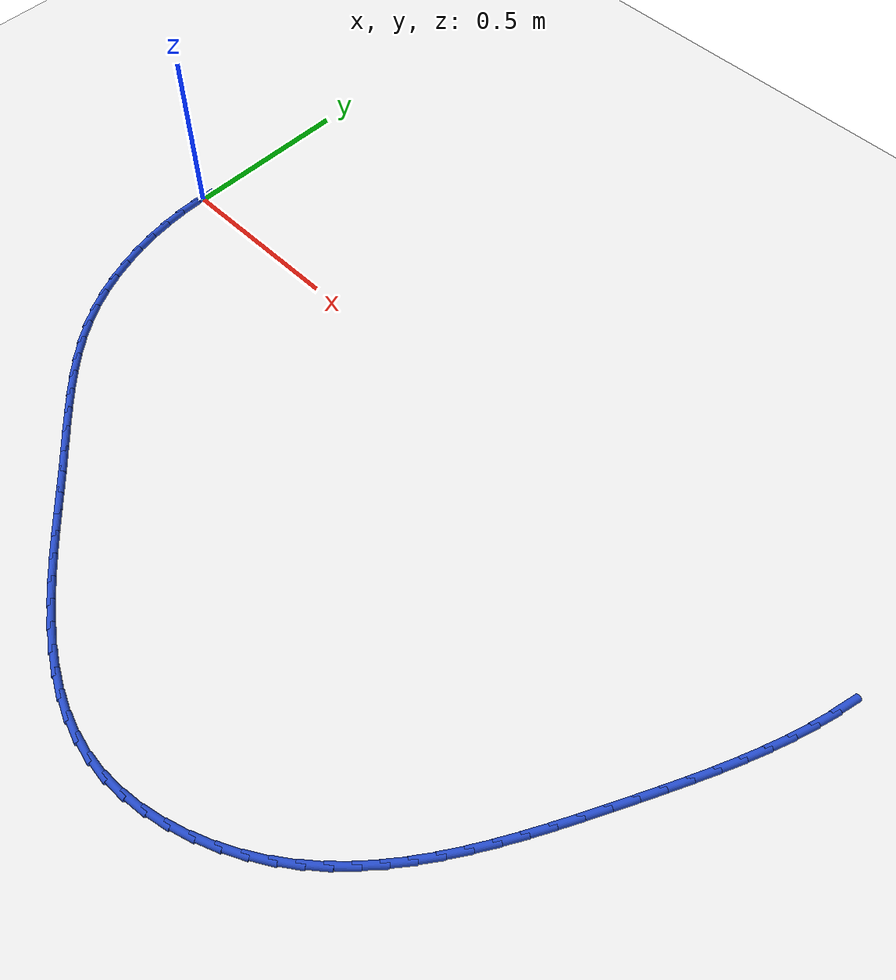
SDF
<sdf version="1.6">
 <world name="default">
  <model name="ground_plane">
   <static>1</static>
   <link name="link">
    <collision name="collision">
     <geometry><plane><normal>0 0 1</normal><size>100 100</size></plane></geometry>
     <surface><friction><ode><mu>100</mu><mu2>50</mu2></ode></friction></surface>
    </collision>
    <visual name="visual">
     <cast_shadows>0</cast_shadows>
     <geometry><plane><normal>0 0 1</normal><size>100 100</size></plane></geometry>
     <material>
      <script><uri>file://media/materials/scripts/gazebo.material</uri><name>Gazebo/WhiteGlow</name></script>
     </material>
    </visual>
   </link>
  </model>
  <model name="line">
   <link name="link_0">
    <pose>2.7755575615628914e-17 8.326672684688674e-17 0.01 0 1.57 1.532792231413533</pose>
    <collision name="collision">
     <geometry><cylinder><radius>0.01</radius><length>0.08</length></cylinder></geometry>
    </collision>
    <visual name="visual">
     <material>
      <script><name>Gazebo/Blue</name><uri>file://media/materials/scripts/gazebo.material</uri></script>
     </material>
     <geometry><cylinder><radius>0.01</radius><length>0.08</length></cylinder></geometry>
    </visual>
   </link>
   <link name="link_60">
    <pose>2.271401792156979 -0.0005981783500707723 0.01 0 1.57 1.3261378564803663</pose>
    <collision name="collision">
     <geometry><cylinder><radius>0.01</radius><length>0.08</length></cylinder></geometry>
    </collision>
    <visual name="visual">
     <material>
      <script><name>Gazebo/Blue</name><uri>file://media/materials/scripts/gazebo.material</uri></script>
     </material>
     <geometry><cylinder><radius>0.01</radius><length>0.08</length></cylinder></geometry>
    </visual>
   </link>
   <link name="link_61">
    <pose>2.2568721467750166 -0.058795950201607196 0.01 0 1.57 1.2764122337094257</pose>
    <collision name="collision">
     <geometry><cylinder><radius>0.01</radius><length>0.08</length></cylinder></geometry>
    </collision>
    <visual name="visual">
     <material>
      <script><name>Gazebo/Blue</name><uri>file://media/materials/scripts/gazebo.material</uri></script>
     </material>
     <geometry><cylinder><radius>0.01</radius><length>0.08</length></cylinder></geometry>
    </visual>
   </link>
   <link name="link_62">
    <pose>2.239126371986851 -0.11732547256954205 0.01 0 1.57 1.2343042193337972</pose>
    <collision name="collision">
     <geometry><cylinder><radius>0.01</radius><length>0.08</length></cylinder></geometry>
    </collision>
    <visual name="visual">
     <material>
      <script><name>Gazebo/Blue</name><uri>file://media/materials/scripts/gazebo.material</uri></script>
     </material>
     <geometry><cylinder><radius>0.01</radius><length>0.08</length></cylinder></geometry>
    </visual>
   </link>
   <link name="link_63">
    <pose>2.2185758948563343 -0.176075545871575 0.01 0 1.57 1.1991087182027274</pose>
    <collision name="collision">
     <geometry><cylinder><radius>0.01</radius><length>0.08</length></cylinder></geometry>
    </collision>
    <visual name="visual">
     <material>
      <script><name>Gazebo/Blue</name><uri>file://media/materials/scripts/gazebo.material</uri></script>
     </material>
     <geometry><cylinder><radius>0.01</radius><length>0.08</length></cylinder></geometry>
    </visual>
   </link>
   <link name="link_64">
    <pose>2.1956321424473177 -0.23493497052540308 0.01 0 1.57 1.1702052773899536</pose>
    <collision name="collision">
     <geometry><cylinder><radius>0.01</radius><length>0.08</length></cylinder></geometry>
    </collision>
    <visual name="visual">
     <material>
      <script><name>Gazebo/Blue</name><uri>file://media/materials/scripts/gazebo.material</uri></script>
     </material>
     <geometry><cylinder><radius>0.01</radius><length>0.08</length></cylinder></geometry>
    </visual>
   </link>
   <link name="link_65">
    <pose>2.1707065418236526 -0.29379254694872575 0.01 0 1.57 1.1470794342509032</pose>
    <collision name="collision">
     <geometry><cylinder><radius>0.01</radius><length>0.08</length></cylinder></geometry>
    </collision>
    <visual name="visual">
     <material>
      <script><name>Gazebo/Blue</name><uri>file://media/materials/scripts/gazebo.material</uri></script>
     </material>
     <geometry><cylinder><radius>0.01</radius><length>0.08</length></cylinder></geometry>
    </visual>
   </link>
   <link name="link_66">
    <pose>2.1442105200491897 -0.35253707555924235 0.01 0 1.57 1.1293313094129451</pose>
    <collision name="collision">
     <geometry><cylinder><radius>0.01</radius><length>0.08</length></cylinder></geometry>
    </collision>
    <visual name="visual">
     <material>
      <script><name>Gazebo/Blue</name><uri>file://media/materials/scripts/gazebo.material</uri></script>
     </material>
     <geometry><cylinder><radius>0.01</radius><length>0.08</length></cylinder></geometry>
    </visual>
   </link>
   <link name="link_67">
    <pose>2.1165555041877826 -0.4110573567746503 0.01 0 1.57 1.116678352730341</pose>
    <collision name="collision">
     <geometry><cylinder><radius>0.01</radius><length>0.08</length></cylinder></geometry>
    </collision>
    <visual name="visual">
     <material>
      <script><name>Gazebo/Blue</name><uri>file://media/materials/scripts/gazebo.material</uri></script>
     </material>
     <geometry><cylinder><radius>0.01</radius><length>0.08</length></cylinder></geometry>
    </visual>
   </link>
   <link name="link_68">
    <pose>2.088152921303281 -0.46924219101264886 0.01 0 1.57 1.108956723404729</pose>
    <collision name="collision">
     <geometry><cylinder><radius>0.01</radius><length>0.08</length></cylinder></geometry>
    </collision>
    <visual name="visual">
     <material>
      <script><name>Gazebo/Blue</name><uri>file://media/materials/scripts/gazebo.material</uri></script>
     </material>
     <geometry><cylinder><radius>0.01</radius><length>0.08</length></cylinder></geometry>
    </visual>
   </link>
   <link name="link_69">
    <pose>2.0594141984595353 -0.5269803786909366 0.01 0 1.57 1.1045768887393947</pose>
    <collision name="collision">
     <geometry><cylinder><radius>0.01</radius><length>0.08</length></cylinder></geometry>
    </collision>
    <visual name="visual">
     <material>
      <script><name>Gazebo/Blue</name><uri>file://media/materials/scripts/gazebo.material</uri></script>
     </material>
     <geometry><cylinder><radius>0.01</radius><length>0.08</length></cylinder></geometry>
    </visual>
   </link>
   <link name="link_70">
    <pose>2.0306474276278412 -0.5841458964468993 0.01 0 1.57 1.0968054019725302</pose>
    <collision name="collision">
     <geometry><cylinder><radius>0.01</radius><length>0.08</length></cylinder></geometry>
    </collision>
    <visual name="visual">
     <material>
      <script><name>Gazebo/Blue</name><uri>file://media/materials/scripts/gazebo.material</uri></script>
     </material>
     <geometry><cylinder><radius>0.01</radius><length>0.08</length></cylinder></geometry>
    </visual>
   </link>
   <link name="link_71">
    <pose>2.001713067883838 -0.6405485064139963 0.01 0 1.57 1.0836677969830797</pose>
    <collision name="collision">
     <geometry><cylinder><radius>0.01</radius><length>0.08</length></cylinder></geometry>
    </collision>
    <visual name="visual">
     <material>
      <script><name>Gazebo/Blue</name><uri>file://media/materials/scripts/gazebo.material</uri></script>
     </material>
     <geometry><cylinder><radius>0.01</radius><length>0.08</length></cylinder></geometry>
    </visual>
   </link>
   <link name="link_72">
    <pose>1.9723503974388112 -0.6959805869070185 0.01 0 1.57 1.0649574060579046</pose>
    <collision name="collision">
     <geometry><cylinder><radius>0.01</radius><length>0.08</length></cylinder></geometry>
    </collision>
    <visual name="visual">
     <material>
      <script><name>Gazebo/Blue</name><uri>file://media/materials/scripts/gazebo.material</uri></script>
     </material>
     <geometry><cylinder><radius>0.01</radius><length>0.08</length></cylinder></geometry>
    </visual>
   </link>
   <link name="link_73">
    <pose>1.942298692405942 -0.7502345159397749 0.01 0 1.57 1.040442802072884</pose>
    <collision name="collision">
     <geometry><cylinder><radius>0.01</radius><length>0.08</length></cylinder></geometry>
    </collision>
    <visual name="visual">
     <material>
      <script><name>Gazebo/Blue</name><uri>file://media/materials/scripts/gazebo.material</uri></script>
     </material>
     <geometry><cylinder><radius>0.01</radius><length>0.08</length></cylinder></geometry>
    </visual>
   </link>
   <link name="link_74">
    <pose>1.9112972288984085 -0.8031026715260748 0.01 0 1.57 1.0098832333275587</pose>
    <collision name="collision">
     <geometry><cylinder><radius>0.01</radius><length>0.08</length></cylinder></geometry>
    </collision>
    <visual name="visual">
     <material>
      <script><name>Gazebo/Blue</name><uri>file://media/materials/scripts/gazebo.material</uri></script>
     </material>
     <geometry><cylinder><radius>0.01</radius><length>0.08</length></cylinder></geometry>
    </visual>
   </link>
   <link name="link_75">
    <pose>1.879085283029393 -0.8543774316797266 0.01 0 1.57 0.9730531030176095</pose>
    <collision name="collision">
     <geometry><cylinder><radius>0.01</radius><length>0.08</length></cylinder></geometry>
    </collision>
    <visual name="visual">
     <material>
      <script><name>Gazebo/Blue</name><uri>file://media/materials/scripts/gazebo.material</uri></script>
     </material>
     <geometry><cylinder><radius>0.01</radius><length>0.08</length></cylinder></geometry>
    </visual>
   </link>
   <link name="link_76">
    <pose>1.845402130912075 -0.9038511744145397 0.01 0 1.57 0.929777370723623</pose>
    <collision name="collision">
     <geometry><cylinder><radius>0.01</radius><length>0.08</length></cylinder></geometry>
    </collision>
    <visual name="visual">
     <material>
      <script><name>Gazebo/Blue</name><uri>file://media/materials/scripts/gazebo.material</uri></script>
     </material>
     <geometry><cylinder><radius>0.01</radius><length>0.08</length></cylinder></geometry>
    </visual>
   </link>
   <link name="link_77">
    <pose>1.8099870486596346 -0.9513162777443229 0.01 0 1.57 0.8799787886957166</pose>
    <collision name="collision">
     <geometry><cylinder><radius>0.01</radius><length>0.08</length></cylinder></geometry>
    </collision>
    <visual name="visual">
     <material>
      <script><name>Gazebo/Blue</name><uri>file://media/materials/scripts/gazebo.material</uri></script>
     </material>
     <geometry><cylinder><radius>0.01</radius><length>0.08</length></cylinder></geometry>
    </visual>
   </link>
   <link name="link_78">
    <pose>1.7725793123852511 -0.9965651196828865 0.01 0 1.57 0.8237354741875375</pose>
    <collision name="collision">
     <geometry><cylinder><radius>0.01</radius><length>0.08</length></cylinder></geometry>
    </collision>
    <visual name="visual">
     <material>
      <script><name>Gazebo/Blue</name><uri>file://media/materials/scripts/gazebo.material</uri></script>
     </material>
     <geometry><cylinder><radius>0.01</radius><length>0.08</length></cylinder></geometry>
    </visual>
   </link>
   <link name="link_79">
    <pose>1.7329181982021065 -1.0393900782440377 0.01 0 1.57 0.761343136880704</pose>
    <collision name="collision">
     <geometry><cylinder><radius>0.01</radius><length>0.08</length></cylinder></geometry>
    </collision>
    <visual name="visual">
     <material>
      <script><name>Gazebo/Blue</name><uri>file://media/materials/scripts/gazebo.material</uri></script>
     </material>
     <geometry><cylinder><radius>0.01</radius><length>0.08</length></cylinder></geometry>
    </visual>
   </link>
   <link name="link_80">
    <pose>1.6907429822233802 -1.0795835314415871 0.01 0 1.57 0.69337071587507</pose>
    <collision name="collision">
     <geometry><cylinder><radius>0.01</radius><length>0.08</length></cylinder></geometry>
    </collision>
    <visual name="visual">
     <material>
      <script><name>Gazebo/Blue</name><uri>file://media/materials/scripts/gazebo.material</uri></script>
     </material>
     <geometry><cylinder><radius>0.01</radius><length>0.08</length></cylinder></geometry>
    </visual>
   </link>
   <link name="link_81">
    <pose>1.6457929405622513 -1.1169378572893434 0.01 0 1.57 0.6206930472653036</pose>
    <collision name="collision">
     <geometry><cylinder><radius>0.01</radius><length>0.08</length></cylinder></geometry>
    </collision>
    <visual name="visual">
     <material>
      <script><name>Gazebo/Blue</name><uri>file://media/materials/scripts/gazebo.material</uri></script>
     </material>
     <geometry><cylinder><radius>0.01</radius><length>0.08</length></cylinder></geometry>
    </visual>
   </link>
   <link name="link_82">
    <pose>1.5978073493319014 -1.1512454338011149 0.01 0 1.57 0.5445632836083576</pose>
    <collision name="collision">
     <geometry><cylinder><radius>0.01</radius><length>0.08</length></cylinder></geometry>
    </collision>
    <visual name="visual">
     <material>
      <script><name>Gazebo/Blue</name><uri>file://media/materials/scripts/gazebo.material</uri></script>
     </material>
     <geometry><cylinder><radius>0.01</radius><length>0.08</length></cylinder></geometry>
    </visual>
   </link>
   <link name="link_83">
    <pose>1.5465445105570461 -1.1822927528388372 0.01 0 1.57 0.46764935067967994</pose>
    <collision name="collision">
     <geometry><cylinder><radius>0.01</radius><length>0.08</length></cylinder></geometry>
    </collision>
    <visual name="visual">
     <material>
      <script><name>Gazebo/Blue</name><uri>file://media/materials/scripts/gazebo.material</uri></script>
     </material>
     <geometry><cylinder><radius>0.01</radius><length>0.08</length></cylinder></geometry>
    </visual>
   </link>
   <link name="link_84">
    <pose>1.4922325654096864 -1.209720949519118 0.01 0 1.57 0.39022823965275927</pose>
    <collision name="collision">
     <geometry><cylinder><radius>0.01</radius><length>0.08</length></cylinder></geometry>
    </collision>
    <visual name="visual">
     <material>
      <script><name>Gazebo/Blue</name><uri>file://media/materials/scripts/gazebo.material</uri></script>
     </material>
     <geometry><cylinder><radius>0.01</radius><length>0.08</length></cylinder></geometry>
    </visual>
   </link>
   <link name="link_85">
    <pose>1.4355881374502697 -1.233020034450226 0.01 0 1.57 0.30996668205977695</pose>
    <collision name="collision">
     <geometry><cylinder><radius>0.01</radius><length>0.08</length></cylinder></geometry>
    </collision>
    <visual name="visual">
     <material>
      <script><name>Gazebo/Blue</name><uri>file://media/materials/scripts/gazebo.material</uri></script>
     </material>
     <geometry><cylinder><radius>0.01</radius><length>0.08</length></cylinder></geometry>
    </visual>
   </link>
   <link name="link_86">
    <pose>1.3773506065690189 -1.2516729779883546 0.01 0 1.57 0.22444096461834706</pose>
    <collision name="collision">
     <geometry><cylinder><radius>0.01</radius><length>0.08</length></cylinder></geometry>
    </collision>
    <visual name="visual">
     <material>
      <script><name>Gazebo/Blue</name><uri>file://media/materials/scripts/gazebo.material</uri></script>
     </material>
     <geometry><cylinder><radius>0.01</radius><length>0.08</length></cylinder></geometry>
    </visual>
   </link>
   <link name="link_87">
    <pose>1.3182593526561532 -1.2651627504896963 0.01 0 1.57 0.1311488415604125</pose>
    <collision name="collision">
     <geometry><cylinder><radius>0.01</radius><length>0.08</length></cylinder></geometry>
    </collision>
    <visual name="visual">
     <material>
      <script><name>Gazebo/Blue</name><uri>file://media/materials/scripts/gazebo.material</uri></script>
     </material>
     <geometry><cylinder><radius>0.01</radius><length>0.08</length></cylinder></geometry>
    </visual>
   </link>
   <link name="link_88">
    <pose>1.259053755601893 -1.2729723223104443 0.01 0 1.57 0.027516543607859306</pose>
    <collision name="collision">
     <geometry><cylinder><radius>0.01</radius><length>0.08</length></cylinder></geometry>
    </collision>
    <visual name="visual">
     <material>
      <script><name>Gazebo/Blue</name><uri>file://media/materials/scripts/gazebo.material</uri></script>
     </material>
     <geometry><cylinder><radius>0.01</radius><length>0.08</length></cylinder></geometry>
    </visual>
   </link>
   <link name="link_89">
    <pose>1.2004731952964582 -1.2745846638067924 0.01 0 1.57 -0.08594302344162245</pose>
    <collision name="collision">
     <geometry><cylinder><radius>0.01</radius><length>0.08</length></cylinder></geometry>
    </collision>
    <visual name="visual">
     <material>
      <script><name>Gazebo/Blue</name><uri>file://media/materials/scripts/gazebo.material</uri></script>
     </material>
     <geometry><cylinder><radius>0.01</radius><length>0.08</length></cylinder></geometry>
    </visual>
   </link>
   <link name="link_90">
    <pose>1.14313312978244 -1.2696445162406962 0.01 0 1.57 -0.1959564750295716</pose>
    <collision name="collision">
     <geometry><cylinder><radius>0.01</radius><length>0.08</length></cylinder></geometry>
    </collision>
    <visual name="visual">
     <material>
      <script><name>Gazebo/Blue</name><uri>file://media/materials/scripts/gazebo.material</uri></script>
     </material>
     <geometry><cylinder><radius>0.01</radius><length>0.08</length></cylinder></geometry>
    </visual>
   </link>
   <link name="link_91">
    <pose>1.0870944109380867 -1.2585206186457791 0.01 0 1.57 -0.296251295319989</pose>
    <collision name="collision">
     <geometry><cylinder><radius>0.01</radius><length>0.08</length></cylinder></geometry>
    </collision>
    <visual name="visual">
     <material>
      <script><name>Gazebo/Blue</name><uri>file://media/materials/scripts/gazebo.material</uri></script>
     </material>
     <geometry><cylinder><radius>0.01</radius><length>0.08</length></cylinder></geometry>
    </visual>
   </link>
   <link name="link_92">
    <pose>1.0322627996622427 -1.2417841699825762 0.01 0 1.57 -0.3851562213044246</pose>
    <collision name="collision">
     <geometry><cylinder><radius>0.01</radius><length>0.08</length></cylinder></geometry>
    </collision>
    <visual name="visual">
     <material>
      <script><name>Gazebo/Blue</name><uri>file://media/materials/scripts/gazebo.material</uri></script>
     </material>
     <geometry><cylinder><radius>0.01</radius><length>0.08</length></cylinder></geometry>
    </visual>
   </link>
   <link name="link_93">
    <pose>0.9785440495811795 -1.2200063787054305 0.01 0 1.57 -0.4620958655753481</pose>
    <collision name="collision">
     <geometry><cylinder><radius>0.01</radius><length>0.08</length></cylinder></geometry>
    </collision>
    <visual name="visual">
     <material>
      <script><name>Gazebo/Blue</name><uri>file://media/materials/scripts/gazebo.material</uri></script>
     </material>
     <geometry><cylinder><radius>0.01</radius><length>0.08</length></cylinder></geometry>
    </visual>
   </link>
   <link name="link_94">
    <pose>0.9258439143211721 -1.1937584532686845 0.01 0 1.57 -0.5272717042098041</pose>
    <collision name="collision">
     <geometry><cylinder><radius>0.01</radius><length>0.08</length></cylinder></geometry>
    </collision>
    <visual name="visual">
     <material>
      <script><name>Gazebo/Blue</name><uri>file://media/materials/scripts/gazebo.material</uri></script>
     </material>
     <geometry><cylinder><radius>0.01</radius><length>0.08</length></cylinder></geometry>
    </visual>
   </link>
   <link name="link_95">
    <pose>0.8740681475084934 -1.1636116021266827 0.01 0 1.57 -0.5813253719937664</pose>
    <collision name="collision">
     <geometry><cylinder><radius>0.01</radius><length>0.08</length></cylinder></geometry>
    </collision>
    <visual name="visual">
     <material>
      <script><name>Gazebo/Blue</name><uri>file://media/materials/scripts/gazebo.material</uri></script>
     </material>
     <geometry><cylinder><radius>0.01</radius><length>0.08</length></cylinder></geometry>
    </visual>
   </link>
   <link name="link_96">
    <pose>0.8231225027694153 -1.1301370337337664 0.01 0 1.57 -0.6250721682668762</pose>
    <collision name="collision">
     <geometry><cylinder><radius>0.01</radius><length>0.08</length></cylinder></geometry>
    </collision>
    <visual name="visual">
     <material>
      <script><name>Gazebo/Blue</name><uri>file://media/materials/scripts/gazebo.material</uri></script>
     </material>
     <geometry><cylinder><radius>0.01</radius><length>0.08</length></cylinder></geometry>
    </visual>
   </link>
   <link name="link_97">
    <pose>0.7729127337302123 -1.0939059565442804 0.01 0 1.57 -0.6593235450517713</pose>
    <collision name="collision">
     <geometry><cylinder><radius>0.01</radius><length>0.08</length></cylinder></geometry>
    </collision>
    <visual name="visual">
     <material>
      <script><name>Gazebo/Blue</name><uri>file://media/materials/scripts/gazebo.material</uri></script>
     </material>
     <geometry><cylinder><radius>0.01</radius><length>0.08</length></cylinder></geometry>
    </visual>
   </link>
   <link name="link_98">
    <pose>0.7233445940171572 -1.0554895790125673 0.01 0 1.57 -0.6847827131718394</pose>
    <collision name="collision">
     <geometry><cylinder><radius>0.01</radius><length>0.08</length></cylinder></geometry>
    </collision>
    <visual name="visual">
     <material>
      <script><name>Gazebo/Blue</name><uri>file://media/materials/scripts/gazebo.material</uri></script>
     </material>
     <geometry><cylinder><radius>0.01</radius><length>0.08</length></cylinder></geometry>
    </visual>
   </link>
   <link name="link_99">
    <pose>0.6743238372565231 -1.0154591095929701 0.01 0 1.57 -0.7019889859127101</pose>
    <collision name="collision">
     <geometry><cylinder><radius>0.01</radius><length>0.08</length></cylinder></geometry>
    </collision>
    <visual name="visual">
     <material>
      <script><name>Gazebo/Blue</name><uri>file://media/materials/scripts/gazebo.material</uri></script>
     </material>
     <geometry><cylinder><radius>0.01</radius><length>0.08</length></cylinder></geometry>
    </visual>
   </link>
   <link name="link_100">
    <pose>0.6257562170745824 -0.9743857567398314 0.01 0 1.57 -0.7112898616282047</pose>
    <collision name="collision">
     <geometry><cylinder><radius>0.01</radius><length>0.08</length></cylinder></geometry>
    </collision>
    <visual name="visual">
     <material>
      <script><name>Gazebo/Blue</name><uri>file://media/materials/scripts/gazebo.material</uri></script>
     </material>
     <geometry><cylinder><radius>0.01</radius><length>0.08</length></cylinder></geometry>
    </visual>
   </link>
   <link name="link_101">
    <pose>0.5775474870976098 -0.9328407289074957 0.01 0 1.57 -0.7128261807451488</pose>
    <collision name="collision">
     <geometry><cylinder><radius>0.01</radius><length>0.08</length></cylinder></geometry>
    </collision>
    <visual name="visual">
     <material>
      <script><name>Gazebo/Blue</name><uri>file://media/materials/scripts/gazebo.material</uri></script>
     </material>
     <geometry><cylinder><radius>0.01</radius><length>0.08</length></cylinder></geometry>
    </visual>
   </link>
   <link name="link_102">
    <pose>0.5296034009518774 -0.891395234550305 0.01 0 1.57 -0.7066848750398824</pose>
    <collision name="collision">
     <geometry><cylinder><radius>0.01</radius><length>0.08</length></cylinder></geometry>
    </collision>
    <visual name="visual">
     <material>
      <script><name>Gazebo/Blue</name><uri>file://media/materials/scripts/gazebo.material</uri></script>
     </material>
     <geometry><cylinder><radius>0.01</radius><length>0.08</length></cylinder></geometry>
    </visual>
   </link>
   <link name="link_103">
    <pose>0.48183433932091874 -0.8506109308099753 0.01 0 1.57 -0.6998281338691394</pose>
    <collision name="collision">
     <geometry><cylinder><radius>0.01</radius><length>0.08</length></cylinder></geometry>
    </collision>
    <visual name="visual">
     <material>
      <script><name>Gazebo/Blue</name><uri>file://media/materials/scripts/gazebo.material</uri></script>
     </material>
     <geometry><cylinder><radius>0.01</radius><length>0.08</length></cylinder></geometry>
    </visual>
   </link>
   <link name="link_104">
    <pose>0.4343529819132114 -0.8106318830149137 0.01 0 1.57 -0.7022178551538186</pose>
    <collision name="collision">
     <geometry><cylinder><radius>0.01</radius><length>0.08</length></cylinder></geometry>
    </collision>
    <visual name="visual">
     <material>
      <script><name>Gazebo/Blue</name><uri>file://media/materials/scripts/gazebo.material</uri></script>
     </material>
     <geometry><cylinder><radius>0.01</radius><length>0.08</length></cylinder></geometry>
    </visual>
   </link>
   <link name="link_105">
    <pose>0.38754856364488316 -0.7710312828045806 0.01 0 1.57 -0.7149341772878652</pose>
    <collision name="collision">
     <geometry><cylinder><radius>0.01</radius><length>0.08</length></cylinder></geometry>
    </collision>
    <visual name="visual">
     <material>
      <script><name>Gazebo/Blue</name><uri>file://media/materials/scripts/gazebo.material</uri></script>
     </material>
     <geometry><cylinder><radius>0.01</radius><length>0.08</length></cylinder></geometry>
    </visual>
   </link>
   <link name="link_106">
    <pose>0.34183025433862907 -0.7313411715766823 0.01 0 1.57 -0.7383697545672658</pose>
    <collision name="collision">
     <geometry><cylinder><radius>0.01</radius><length>0.08</length></cylinder></geometry>
    </collision>
    <visual name="visual">
     <material>
      <script><name>Gazebo/Blue</name><uri>file://media/materials/scripts/gazebo.material</uri></script>
     </material>
     <geometry><cylinder><radius>0.01</radius><length>0.08</length></cylinder></geometry>
    </visual>
   </link>
   <link name="link_107">
    <pose>0.29760722381714483 -0.691093590728927 0.01 0 1.57 -0.7728907052988835</pose>
    <collision name="collision">
     <geometry><cylinder><radius>0.01</radius><length>0.08</length></cylinder></geometry>
    </collision>
    <visual name="visual">
     <material>
      <script><name>Gazebo/Blue</name><uri>file://media/materials/scripts/gazebo.material</uri></script>
     </material>
     <geometry><cylinder><radius>0.01</radius><length>0.08</length></cylinder></geometry>
    </visual>
   </link>
   <link name="link_108">
    <pose>0.25528864190312556 -0.6498205816590217 0.01 0 1.57 -0.8187479668997655</pose>
    <collision name="collision">
     <geometry><cylinder><radius>0.01</radius><length>0.08</length></cylinder></geometry>
    </collision>
    <visual name="visual">
     <material>
      <script><name>Gazebo/Blue</name><uri>file://media/materials/scripts/gazebo.material</uri></script>
     </material>
     <geometry><cylinder><radius>0.01</radius><length>0.08</length></cylinder></geometry>
    </visual>
   </link>
   <link name="link_109">
    <pose>0.21528367841926824 -0.6070541857646753 0.01 0 1.57 -0.8759385530386975</pose>
    <collision name="collision">
     <geometry><cylinder><radius>0.01</radius><length>0.08</length></cylinder></geometry>
    </collision>
    <visual name="visual">
     <material>
      <script><name>Gazebo/Blue</name><uri>file://media/materials/scripts/gazebo.material</uri></script>
     </material>
     <geometry><cylinder><radius>0.01</radius><length>0.08</length></cylinder></geometry>
    </visual>
   </link>
   <link name="link_110">
    <pose>0.17800150318826793 -0.562326444443595 0.01 0 1.57 -0.9440254383879295</pose>
    <collision name="collision">
     <geometry><cylinder><radius>0.01</radius><length>0.08</length></cylinder></geometry>
    </collision>
    <visual name="visual">
     <material>
      <script><name>Gazebo/Blue</name><uri>file://media/materials/scripts/gazebo.material</uri></script>
     </material>
     <geometry><cylinder><radius>0.01</radius><length>0.08</length></cylinder></geometry>
    </visual>
   </link>
   <link name="link_111">
    <pose>0.14385128603282046 -0.5151693990934889 0.01 0 1.57 -1.0211961776148675</pose>
    <collision name="collision">
     <geometry><cylinder><radius>0.01</radius><length>0.08</length></cylinder></geometry>
    </collision>
    <visual name="visual">
     <material>
      <script><name>Gazebo/Blue</name><uri>file://media/materials/scripts/gazebo.material</uri></script>
     </material>
     <geometry><cylinder><radius>0.01</radius><length>0.08</length></cylinder></geometry>
    </visual>
   </link>
   <link name="link_112">
    <pose>0.11321966607895774 -0.4651630972184779 0.01 0 1.57 -1.0983083223564647</pose>
    <collision name="collision">
     <geometry><cylinder><radius>0.01</radius><length>0.08</length></cylinder></geometry>
    </collision>
    <visual name="visual">
     <material>
      <script><name>Gazebo/Blue</name><uri>file://media/materials/scripts/gazebo.material</uri></script>
     </material>
     <geometry><cylinder><radius>0.01</radius><length>0.08</length></cylinder></geometry>
    </visual>
   </link>
   <link name="link_113">
    <pose>0.08625263046577439 -0.41240034298823797 0.01 0 1.57 -1.1708031873940792</pose>
    <collision name="collision">
     <geometry><cylinder><radius>0.01</radius><length>0.08</length></cylinder></geometry>
    </collision>
    <visual name="visual">
     <material>
      <script><name>Gazebo/Blue</name><uri>file://media/materials/scripts/gazebo.material</uri></script>
     </material>
     <geometry><cylinder><radius>0.01</radius><length>0.08</length></cylinder></geometry>
    </visual>
   </link>
   <link name="link_114">
    <pose>0.06295044309474401 -0.3572844327581349 0.01 0 1.57 -1.2393203741421266</pose>
    <collision name="collision">
     <geometry><cylinder><radius>0.01</radius><length>0.08</length></cylinder></geometry>
    </collision>
    <visual name="visual">
     <material>
      <script><name>Gazebo/Blue</name><uri>file://media/materials/scripts/gazebo.material</uri></script>
     </material>
     <geometry><cylinder><radius>0.01</radius><length>0.08</length></cylinder></geometry>
    </visual>
   </link>
   <link name="link_115">
    <pose>0.04331133375240614 -0.30022299696780386 0.01 0 1.57 -1.3046051792301065</pose>
    <collision name="collision">
     <geometry><cylinder><radius>0.01</radius><length>0.08</length></cylinder></geometry>
    </collision>
    <visual name="visual">
     <material>
      <script><name>Gazebo/Blue</name><uri>file://media/materials/scripts/gazebo.material</uri></script>
     </material>
     <geometry><cylinder><radius>0.01</radius><length>0.08</length></cylinder></geometry>
    </visual>
   </link>
   <link name="link_116">
    <pose>0.027333532225301004 -0.24162366605688226 0.01 0 1.57 -1.3674139376971333</pose>
    <collision name="collision">
     <geometry><cylinder><radius>0.01</radius><length>0.08</length></cylinder></geometry>
    </collision>
    <visual name="visual">
     <material>
      <script><name>Gazebo/Blue</name><uri>file://media/materials/scripts/gazebo.material</uri></script>
     </material>
     <geometry><cylinder><radius>0.01</radius><length>0.08</length></cylinder></geometry>
    </visual>
   </link>
   <link name="link_117">
    <pose>0.01501526829996807 -0.18189407046500516 0.01 0 1.57 -1.428502709975424</pose>
    <collision name="collision">
     <geometry><cylinder><radius>0.01</radius><length>0.08</length></cylinder></geometry>
    </collision>
    <visual name="visual">
     <material>
      <script><name>Gazebo/Blue</name><uri>file://media/materials/scripts/gazebo.material</uri></script>
     </material>
     <geometry><cylinder><radius>0.01</radius><length>0.08</length></cylinder></geometry>
    </visual>
   </link>
   <link name="link_118">
    <pose>0.0063547717629471034 -0.12144184063180868 0.01 0 1.57 -1.4886265333215185</pose>
    <collision name="collision">
     <geometry><cylinder><radius>0.01</radius><length>0.08</length></cylinder></geometry>
    </collision>
    <visual name="visual">
     <material>
      <script><name>Gazebo/Blue</name><uri>file://media/materials/scripts/gazebo.material</uri></script>
     </material>
     <geometry><cylinder><radius>0.01</radius><length>0.08</length></cylinder></geometry>
    </visual>
   </link>
   <link name="link_119">
    <pose>0.0013502724007777925 -0.060674606996927706 0.01 0 1.57 -1.5485456749306394</pose>
    <collision name="collision">
     <geometry><cylinder><radius>0.01</radius><length>0.08</length></cylinder></geometry>
    </collision>
    <visual name="visual">
     <material>
      <script><name>Gazebo/Blue</name><uri>file://media/materials/scripts/gazebo.material</uri></script>
     </material>
     <geometry><cylinder><radius>0.01</radius><length>0.08</length></cylinder></geometry>
    </visual>
   </link>
  </model>
 </world>
</sdf>
